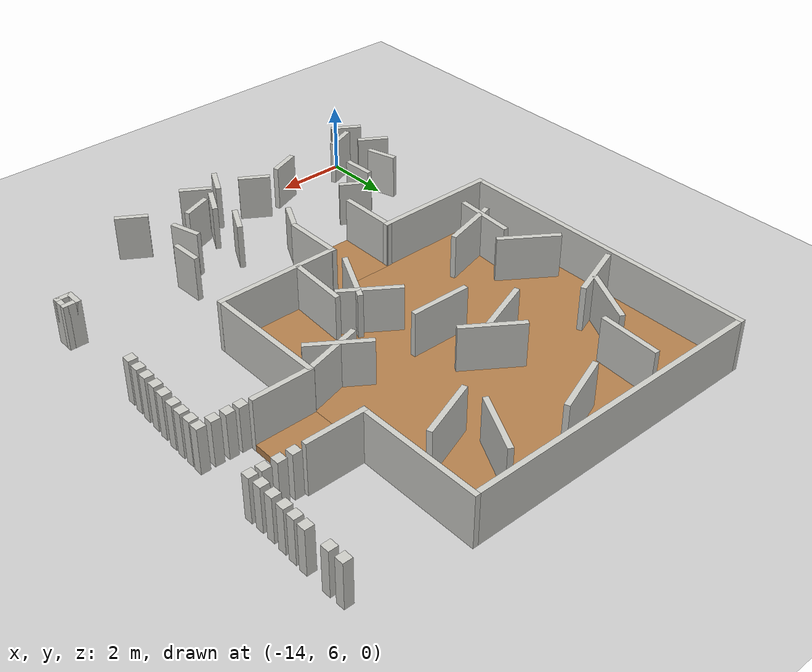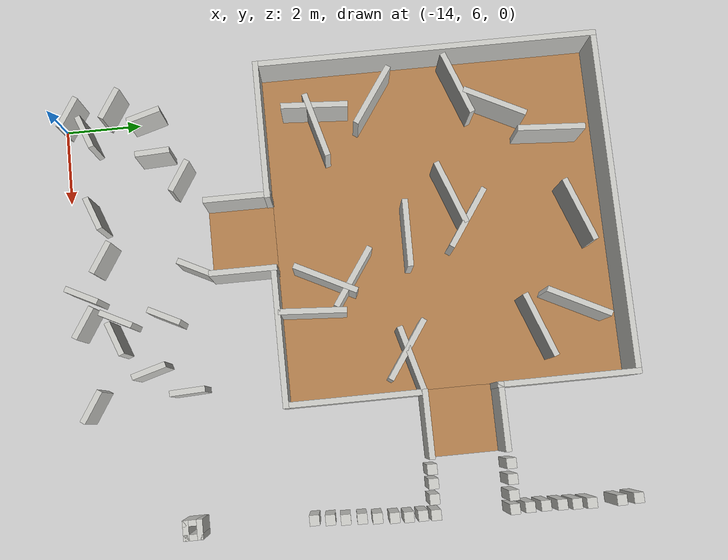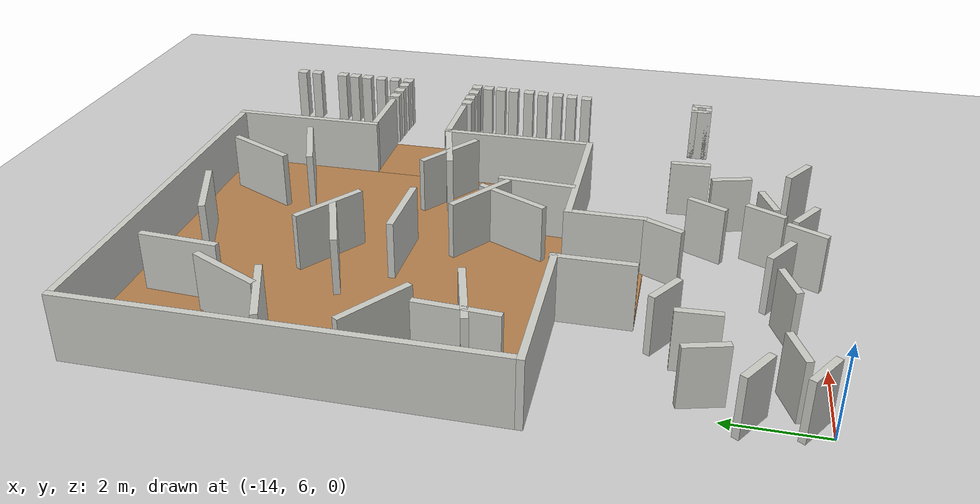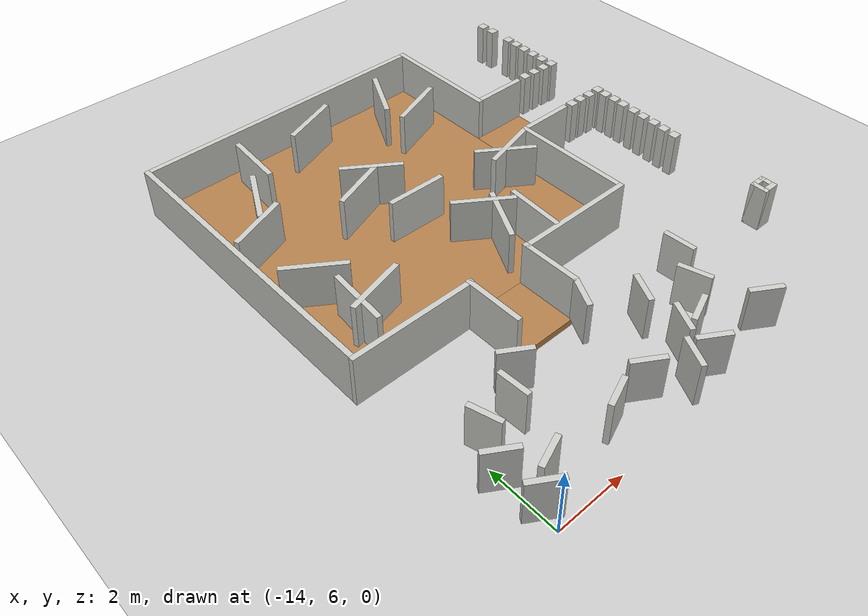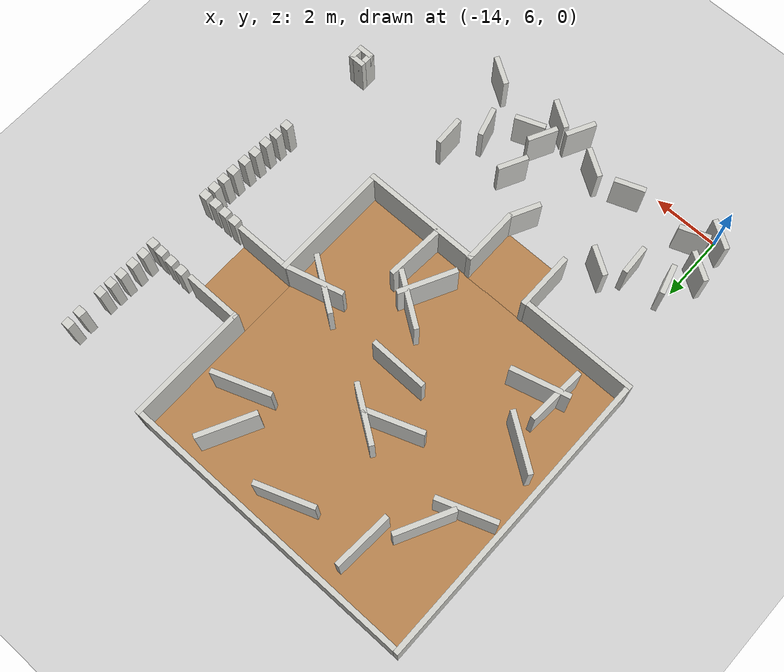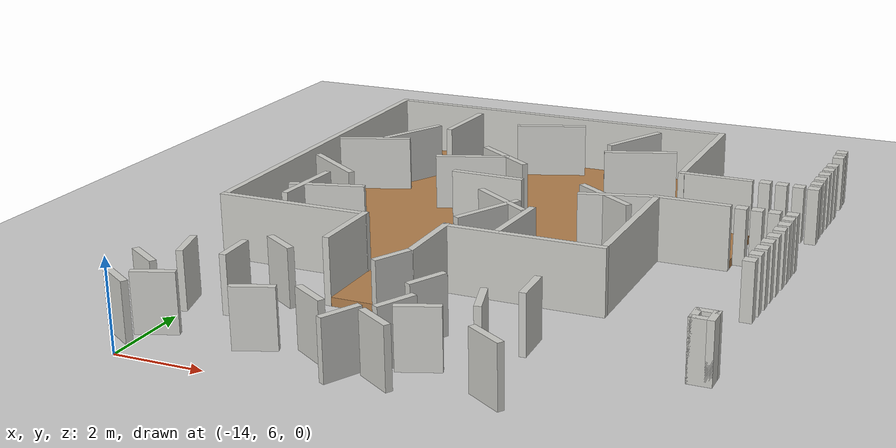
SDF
<sdf version="1.6">
 <world name="default">
  <model name="ground_plane">
   <static>1</static>
   <link name="link">
    <collision name="collision">
     <geometry><plane><normal>0 0 1</normal><size>100 100</size></plane></geometry>
     <surface><friction><ode><mu>100</mu><mu2>50</mu2></ode></friction></surface>
    </collision>
    <visual name="visual">
     <cast_shadows>0</cast_shadows>
     <geometry><plane><normal>0 0 1</normal><size>100 100</size></plane></geometry>
     <material>
      <script><uri>file://media/materials/scripts/gazebo.material</uri><name>Gazebo/Grey</name></script>
     </material>
    </visual>
   </link>
  </model>
  <model name="nerve_straight_clone">
   <pose>-10.4732 10.573 0 0 -0 0</pose>
   <link name="Wall_0">
    <collision name="Wall_0_Collision">
     <geometry><box><size>1.76 1.75 0.2</size></box></geometry>
     <pose>0 0 0.1 0 -0 0</pose>
    </collision>
    <visual name="Wall_0_Visual">
     <pose>0 0 0.1 0 -0 0</pose>
     <geometry><box><size>1.76 1.75 0.2</size></box></geometry>
     <material>
      <script><uri>file://media/materials/scripts/gazebo.material</uri><name>Gazebo/Wood</name></script>
      <ambient>1 0.764706 0.305882 1</ambient>
     </material>
    </visual>
    <pose>0.005 -0.002 0 0 -0 3.14159</pose>
   </link>
   <link name="Wall_2">
    <collision name="Wall_2_Collision">
     <geometry><box><size>1.75 0.15 1.5</size></box></geometry>
     <pose>0 0 0.75 0 -0 0</pose>
    </collision>
    <visual name="Wall_2_Visual">
     <pose>0 0 0.75 0 -0 0</pose>
     <geometry><box><size>1.75 0.15 1.5</size></box></geometry>
     <material>
      <script><uri>file://media/materials/scripts/gazebo.material</uri><name>Gazebo/CeilingTiled</name></script>
      <ambient>1 0.764706 0.305882 1</ambient>
     </material>
    </visual>
    <pose>-0.955 0.002 0 0 0 -1.5708</pose>
   </link>
   <link name="Wall_4">
    <collision name="Wall_4_Collision">
     <geometry><box><size>1.75 0.15 1.5</size></box></geometry>
     <pose>0 0 0.75 0 -0 0</pose>
    </collision>
    <visual name="Wall_4_Visual">
     <pose>0 0 0.75 0 -0 0</pose>
     <geometry><box><size>1.75 0.15 1.5</size></box></geometry>
     <material>
      <script><uri>file://media/materials/scripts/gazebo.material</uri><name>Gazebo/CeilingTiled</name></script>
      <ambient>1 0.764706 0.305882 1</ambient>
     </material>
    </visual>
    <pose>0.955 0.002 0 0 0 -1.5708</pose>
   </link>
   <static>1</static>
  </model>
  <model name="nerve_room_5x5ARENA_right_clone">
   <pose>-10.4631 15.8033 0 0 -0 1.5708</pose>
   <link name="Wall_11">
    <collision name="Wall_11_Collision">
     <geometry><box><size>8.75 0.15 1.5</size></box></geometry>
     <pose>0 0 0.75 0 -0 0</pose>
    </collision>
    <visual name="Wall_11_Visual">
     <pose>0 0 0.75 0 -0 0</pose>
     <geometry><box><size>8.75 0.15 1.5</size></box></geometry>
     <material>
      <script><uri>file://media/materials/scripts/gazebo.material</uri><name>Gazebo/CeilingTiled</name></script>
      <ambient>1 0.764706 0.305882 1</ambient>
     </material>
    </visual>
    <pose>4.44912 -0.000431 0 0 0 -1.5708</pose>
   </link>
   <link name="Wall_13">
    <collision name="Wall_13_Collision">
     <geometry><box><size>3.65 0.15 1.5</size></box></geometry>
     <pose>0 0 0.75 0 -0 0</pose>
    </collision>
    <visual name="Wall_13_Visual">
     <pose>0 0 0.75 0 -0 0</pose>
     <geometry><box><size>3.65 0.15 1.5</size></box></geometry>
     <material>
      <script><uri>file://media/materials/scripts/gazebo.material</uri><name>Gazebo/CeilingTiled</name></script>
      <ambient>1 0.764706 0.305882 1</ambient>
     </material>
    </visual>
    <pose>-4.44961 2.70076 0 0 0 -1.5708</pose>
   </link>
   <link name="Wall_15">
    <collision name="Wall_15_Collision">
     <geometry><box><size>3.65 0.15 1.5</size></box></geometry>
     <pose>0 0 0.75 0 -0 0</pose>
    </collision>
    <visual name="Wall_15_Visual">
     <pose>0 0 0.75 0 -0 0</pose>
     <geometry><box><size>3.65 0.15 1.5</size></box></geometry>
     <material>
      <script><uri>file://media/materials/scripts/gazebo.material</uri><name>Gazebo/CeilingTiled</name></script>
      <ambient>1 0.764706 0.305882 1</ambient>
     </material>
    </visual>
    <pose>2.69961 -4.45076 0 0 -0 0</pose>
   </link>
   <link name="Wall_17">
    <collision name="Wall_17_Collision">
     <geometry><box><size>8.90028 0.15 1.5</size></box></geometry>
     <pose>0 0 0.75 0 -0 0</pose>
    </collision>
    <visual name="Wall_17_Visual">
     <pose>0 0 0.75 0 -0 0</pose>
     <geometry><box><size>8.90028 0.15 1.5</size></box></geometry>
     <material>
      <script><uri>file://media/materials/scripts/gazebo.material</uri><name>Gazebo/CeilingTiled</name></script>
      <ambient>1 0.764706 0.305882 1</ambient>
     </material>
    </visual>
    <pose>0.074346 4.45022 0 0 0 -6.5e-05</pose>
   </link>
   <link name="Wall_21">
    <collision name="Wall_21_Collision">
     <geometry><box><size>3.5 0.15 1.5</size></box></geometry>
     <pose>0 0 0.75 0 -0 0</pose>
    </collision>
    <visual name="Wall_21_Visual">
     <pose>0 0 0.75 0 -0 0</pose>
     <geometry><box><size>3.5 0.15 1.5</size></box></geometry>
     <material>
      <script><uri>file://media/materials/scripts/gazebo.material</uri><name>Gazebo/CeilingTiled</name></script>
      <ambient>1 0.764706 0.305882 1</ambient>
     </material>
    </visual>
    <pose>-2.62383 -4.4498 0 0 -0 0</pose>
   </link>
   <link name="Wall_25">
    <collision name="Wall_25_Collision">
     <geometry><box><size>3.65 0.15 1.5</size></box></geometry>
     <pose>0 0 0.75 0 -0 0</pose>
    </collision>
    <visual name="Wall_25_Visual">
     <pose>0 0 0.75 0 -0 0</pose>
     <geometry><box><size>3.65 0.15 1.5</size></box></geometry>
     <material>
      <script><uri>file://media/materials/scripts/gazebo.material</uri><name>Gazebo/CeilingTiled</name></script>
      <ambient>1 0.764706 0.305882 1</ambient>
     </material>
    </visual>
    <pose>-4.44941 -2.70044 0 0 0 -1.5708</pose>
   </link>
   <link name="Wall_6">
    <collision name="Wall_6_Collision">
     <geometry><box><size>8.76 8.75 0.2</size></box></geometry>
     <pose>0 0 0.1 0 -0 0</pose>
    </collision>
    <visual name="Wall_6_Visual">
     <pose>0 0 0.1 0 -0 0</pose>
     <geometry><box><size>8.76 8.75 0.2</size></box></geometry>
     <material>
      <script><uri>file://media/materials/scripts/gazebo.material</uri><name>Gazebo/Wood</name></script>
      <ambient>1 0.764706 0.305882 1</ambient>
     </material>
    </visual>
    <pose>0.000485 -0.004173 0 0 -0 1.5708</pose>
   </link>
   <static>1</static>
  </model>
  <model name="nerve_straight_clone_clone">
   <pose>-5.21273 15.8107 0 0 0 -1.5708</pose>
   <link name="Wall_0">
    <collision name="Wall_0_Collision">
     <geometry><box><size>1.76 1.75 0.2</size></box></geometry>
     <pose>0 0 0.1 0 -0 0</pose>
    </collision>
    <visual name="Wall_0_Visual">
     <pose>0 0 0.1 0 -0 0</pose>
     <geometry><box><size>1.76 1.75 0.2</size></box></geometry>
     <material>
      <script><uri>file://media/materials/scripts/gazebo.material</uri><name>Gazebo/Wood</name></script>
      <ambient>1 0.764706 0.305882 1</ambient>
     </material>
    </visual>
    <pose>0.005 -0.002 0 0 -0 3.14159</pose>
   </link>
   <link name="Wall_2">
    <collision name="Wall_2_Collision">
     <geometry><box><size>1.75 0.15 1.5</size></box></geometry>
     <pose>0 0 0.75 0 -0 0</pose>
    </collision>
    <visual name="Wall_2_Visual">
     <pose>0 0 0.75 0 -0 0</pose>
     <geometry><box><size>1.75 0.15 1.5</size></box></geometry>
     <material>
      <script><uri>file://media/materials/scripts/gazebo.material</uri><name>Gazebo/CeilingTiled</name></script>
      <ambient>1 0.764706 0.305882 1</ambient>
     </material>
    </visual>
    <pose>-0.955 0.002 0 0 0 -1.5708</pose>
   </link>
   <link name="Wall_4">
    <collision name="Wall_4_Collision">
     <geometry><box><size>1.75 0.15 1.5</size></box></geometry>
     <pose>0 0 0.75 0 -0 0</pose>
    </collision>
    <visual name="Wall_4_Visual">
     <pose>0 0 0.75 0 -0 0</pose>
     <geometry><box><size>1.75 0.15 1.5</size></box></geometry>
     <material>
      <script><uri>file://media/materials/scripts/gazebo.material</uri><name>Gazebo/CeilingTiled</name></script>
      <ambient>1 0.764706 0.305882 1</ambient>
     </material>
    </visual>
    <pose>0.955 0.002 0 0 0 -1.5708</pose>
   </link>
   <static>1</static>
  </model>
  <model name="nerve_obs_squarepillar_large">
   <pose>-3.21025 8.80828 0.2 0 -0 0</pose>
   <link name="Wall_31">
    <collision name="Wall_31_Collision">
     <geometry><box><size>0.5 0.15 1.3</size></box></geometry>
     <pose>0 0 0.65 0 -0 0</pose>
    </collision>
    <visual name="Wall_31_Visual">
     <pose>0 0 0.65 0 -0 0</pose>
     <geometry><box><size>0.5 0.15 1.3</size></box></geometry>
     <material>
      <script><uri>file://media/materials/scripts/gazebo.material</uri><name>Gazebo/CeilingTiled</name></script>
      <ambient>1 0.764706 0.305882 1</ambient>
     </material>
    </visual>
    <pose>-0.175 0 0 0 0 -1.5708</pose>
   </link>
   <link name="Wall_32">
    <collision name="Wall_32_Collision">
     <geometry><box><size>0.5 0.15 1.3</size></box></geometry>
     <pose>0 0 0.65 0 -0 0</pose>
    </collision>
    <visual name="Wall_32_Visual">
     <pose>0 0 0.65 0 -0 0</pose>
     <geometry><box><size>0.5 0.15 1.3</size></box></geometry>
     <material>
      <script><uri>file://media/materials/scripts/gazebo.material</uri><name>Gazebo/CeilingTiled</name></script>
      <ambient>1 0.764706 0.305882 1</ambient>
     </material>
    </visual>
    <pose>0 -0.175 0 0 -0 0</pose>
   </link>
   <link name="Wall_33">
    <collision name="Wall_33_Collision">
     <geometry><box><size>0.5 0.15 1.3</size></box></geometry>
     <pose>0 0 0.65 0 -0 0</pose>
    </collision>
    <visual name="Wall_33_Visual">
     <pose>0 0 0.65 0 -0 0</pose>
     <geometry><box><size>0.5 0.15 1.3</size></box></geometry>
     <material>
      <script><uri>file://media/materials/scripts/gazebo.material</uri><name>Gazebo/CeilingTiled</name></script>
      <ambient>1 0.764706 0.305882 1</ambient>
     </material>
    </visual>
    <pose>0.175 0 0 0 -0 1.5708</pose>
   </link>
   <link name="Wall_34">
    <collision name="Wall_34_Collision">
     <geometry><box><size>0.5 0.15 1.3</size></box></geometry>
     <pose>0 0 0.65 0 -0 0</pose>
    </collision>
    <visual name="Wall_34_Visual">
     <pose>0 0 0.65 0 -0 0</pose>
     <geometry><box><size>0.5 0.15 1.3</size></box></geometry>
     <material>
      <script><uri>file://media/materials/scripts/gazebo.material</uri><name>Gazebo/CeilingTiled</name></script>
      <ambient>1 0.764706 0.305882 1</ambient>
     </material>
    </visual>
    <pose>0 0.175 0 0 -0 3.14159</pose>
   </link>
   <static>1</static>
  </model>
  <model name="nerve_obs_wall_short_clone_0">
   <pose>-7.21158 8.00337 0.2 0 0 -1.2889</pose>
   <link name="Wall_21">
    <collision name="Wall_21_Collision">
     <geometry><box><size>0.9 0.15 1.3</size></box></geometry>
     <pose>0 0 0.65 0 -0 0</pose>
    </collision>
    <visual name="Wall_21_Visual">
     <pose>0 0 0.65 0 -0 0</pose>
     <geometry><box><size>0.9 0.15 1.3</size></box></geometry>
     <material>
      <script><uri>file://media/materials/scripts/gazebo.material</uri><name>Gazebo/CeilingTiled</name></script>
      <ambient>1 0.764706 0.305882 1</ambient>
     </material>
    </visual>
   </link>
   <static>1</static>
  </model>
  <model name="nerve_obs_wall_short_clone_1">
   <pose>-13.8397 8.33593 0.2 0 0 -1.2889</pose>
   <link name="Wall_21">
    <collision name="Wall_21_Collision">
     <geometry><box><size>0.9 0.15 1.3</size></box></geometry>
     <pose>0 0 0.65 0 -0 0</pose>
    </collision>
    <visual name="Wall_21_Visual">
     <pose>0 0 0.65 0 -0 0</pose>
     <geometry><box><size>0.9 0.15 1.3</size></box></geometry>
     <material>
      <script><uri>file://media/materials/scripts/gazebo.material</uri><name>Gazebo/CeilingTiled</name></script>
      <ambient>1 0.764706 0.305882 1</ambient>
     </material>
    </visual>
   </link>
   <static>1</static>
  </model>
  <model name="nerve_obs_wall_short_clone_4">
   <pose>-8.55268 8.48308 0.2 0 0 -2.03741</pose>
   <link name="Wall_21">
    <collision name="Wall_21_Collision">
     <geometry><box><size>0.9 0.15 1.3</size></box></geometry>
     <pose>0 0 0.65 0 -0 0</pose>
    </collision>
    <visual name="Wall_21_Visual">
     <pose>0 0 0.65 0 -0 0</pose>
     <geometry><box><size>0.9 0.15 1.3</size></box></geometry>
     <material>
      <script><uri>file://media/materials/scripts/gazebo.material</uri><name>Gazebo/CeilingTiled</name></script>
      <ambient>1 0.764706 0.305882 1</ambient>
     </material>
    </visual>
   </link>
   <static>1</static>
  </model>
  <model name="nerve_obs_wall_short_clone_8">
   <pose>-9.72669 9.33392 0.2 0 0 -2.03741</pose>
   <link name="Wall_21">
    <collision name="Wall_21_Collision">
     <geometry><box><size>0.9 0.15 1.3</size></box></geometry>
     <pose>0 0 0.65 0 -0 0</pose>
    </collision>
    <visual name="Wall_21_Visual">
     <pose>0 0 0.65 0 -0 0</pose>
     <geometry><box><size>0.9 0.15 1.3</size></box></geometry>
     <material>
      <script><uri>file://media/materials/scripts/gazebo.material</uri><name>Gazebo/CeilingTiled</name></script>
      <ambient>1 0.764706 0.305882 1</ambient>
     </material>
    </visual>
   </link>
   <static>1</static>
  </model>
  <model name="nerve_obs_wall_short_clone_9">
   <pose>-8.103 7.20106 0.2 0 0 -2.78163</pose>
   <link name="Wall_21">
    <collision name="Wall_21_Collision">
     <geometry><box><size>0.9 0.15 1.3</size></box></geometry>
     <pose>0 0 0.65 0 -0 0</pose>
    </collision>
    <visual name="Wall_21_Visual">
     <pose>0 0 0.65 0 -0 0</pose>
     <geometry><box><size>0.9 0.15 1.3</size></box></geometry>
     <material>
      <script><uri>file://media/materials/scripts/gazebo.material</uri><name>Gazebo/CeilingTiled</name></script>
      <ambient>1 0.764706 0.305882 1</ambient>
     </material>
    </visual>
   </link>
   <static>1</static>
  </model>
  <model name="nerve_obs_wall_short_clone_10">
   <pose>-11.3669 6.86113 0.2 0 0 -2.78163</pose>
   <link name="Wall_21">
    <collision name="Wall_21_Collision">
     <geometry><box><size>0.9 0.15 1.3</size></box></geometry>
     <pose>0 0 0.65 0 -0 0</pose>
    </collision>
    <visual name="Wall_21_Visual">
     <pose>0 0 0.65 0 -0 0</pose>
     <geometry><box><size>0.9 0.15 1.3</size></box></geometry>
     <material>
      <script><uri>file://media/materials/scripts/gazebo.material</uri><name>Gazebo/CeilingTiled</name></script>
      <ambient>1 0.764706 0.305882 1</ambient>
     </material>
    </visual>
   </link>
   <static>1</static>
  </model>
  <model name="nerve_obs_wall_short_clone_14">
   <pose>-8.58012 6.43852 0.2 0 -0 2.5789</pose>
   <link name="Wall_21">
    <collision name="Wall_21_Collision">
     <geometry><box><size>0.9 0.15 1.3</size></box></geometry>
     <pose>0 0 0.65 0 -0 0</pose>
    </collision>
    <visual name="Wall_21_Visual">
     <pose>0 0 0.65 0 -0 0</pose>
     <geometry><box><size>0.9 0.15 1.3</size></box></geometry>
     <material>
      <script><uri>file://media/materials/scripts/gazebo.material</uri><name>Gazebo/CeilingTiled</name></script>
      <ambient>1 0.764706 0.305882 1</ambient>
     </material>
    </visual>
   </link>
   <static>1</static>
  </model>
  <model name="nerve_obs_wall_short_clone_16">
   <pose>-14.2351 7.46992 0.2 0 -0 2.5789</pose>
   <link name="Wall_21">
    <collision name="Wall_21_Collision">
     <geometry><box><size>0.9 0.15 1.3</size></box></geometry>
     <pose>0 0 0.65 0 -0 0</pose>
    </collision>
    <visual name="Wall_21_Visual">
     <pose>0 0 0.65 0 -0 0</pose>
     <geometry><box><size>0.9 0.15 1.3</size></box></geometry>
     <material>
      <script><uri>file://media/materials/scripts/gazebo.material</uri><name>Gazebo/CeilingTiled</name></script>
      <ambient>1 0.764706 0.305882 1</ambient>
     </material>
    </visual>
   </link>
   <static>1</static>
  </model>
  <model name="nerve_obs_wall_short_clone_17">
   <pose>-12.1436 9.13562 0.2 0 -0 2.5789</pose>
   <link name="Wall_21">
    <collision name="Wall_21_Collision">
     <geometry><box><size>0.9 0.15 1.3</size></box></geometry>
     <pose>0 0 0.65 0 -0 0</pose>
    </collision>
    <visual name="Wall_21_Visual">
     <pose>0 0 0.65 0 -0 0</pose>
     <geometry><box><size>0.9 0.15 1.3</size></box></geometry>
     <material>
      <script><uri>file://media/materials/scripts/gazebo.material</uri><name>Gazebo/CeilingTiled</name></script>
      <ambient>1 0.764706 0.305882 1</ambient>
     </material>
    </visual>
   </link>
   <static>1</static>
  </model>
  <model name="nerve_obs_wall_short_clone_18">
   <pose>-10.2103 6.9811 0.2 0 -0 2.5789</pose>
   <link name="Wall_21">
    <collision name="Wall_21_Collision">
     <geometry><box><size>0.9 0.15 1.3</size></box></geometry>
     <pose>0 0 0.65 0 -0 0</pose>
    </collision>
    <visual name="Wall_21_Visual">
     <pose>0 0 0.65 0 -0 0</pose>
     <geometry><box><size>0.9 0.15 1.3</size></box></geometry>
     <material>
      <script><uri>file://media/materials/scripts/gazebo.material</uri><name>Gazebo/CeilingTiled</name></script>
      <ambient>1 0.764706 0.305882 1</ambient>
     </material>
    </visual>
   </link>
   <static>1</static>
  </model>
  <model name="nerve_obs_wall_short_clone_22">
   <pose>-12.8276 8.49769 0.2 0 -0 1.61603</pose>
   <link name="Wall_21">
    <collision name="Wall_21_Collision">
     <geometry><box><size>0.9 0.15 1.3</size></box></geometry>
     <pose>0 0 0.65 0 -0 0</pose>
    </collision>
    <visual name="Wall_21_Visual">
     <pose>0 0 0.65 0 -0 0</pose>
     <geometry><box><size>0.9 0.15 1.3</size></box></geometry>
     <material>
      <script><uri>file://media/materials/scripts/gazebo.material</uri><name>Gazebo/CeilingTiled</name></script>
      <ambient>1 0.764706 0.305882 1</ambient>
     </material>
    </visual>
   </link>
   <static>1</static>
  </model>
  <model name="nerve_obs_wall_short_clone_23">
   <pose>-6.60947 8.93077 0.2 0 -0 1.61603</pose>
   <link name="Wall_21">
    <collision name="Wall_21_Collision">
     <geometry><box><size>0.9 0.15 1.3</size></box></geometry>
     <pose>0 0 0.65 0 -0 0</pose>
    </collision>
    <visual name="Wall_21_Visual">
     <pose>0 0 0.65 0 -0 0</pose>
     <geometry><box><size>0.9 0.15 1.3</size></box></geometry>
     <material>
      <script><uri>file://media/materials/scripts/gazebo.material</uri><name>Gazebo/CeilingTiled</name></script>
      <ambient>1 0.764706 0.305882 1</ambient>
     </material>
    </visual>
   </link>
   <static>1</static>
  </model>
  <model name="nerve_obs_wall_short_clone_27">
   <pose>-9.28251 6.44089 0.2 0 -0 1.10316</pose>
   <link name="Wall_21">
    <collision name="Wall_21_Collision">
     <geometry><box><size>0.9 0.15 1.3</size></box></geometry>
     <pose>0 0 0.65 0 -0 0</pose>
    </collision>
    <visual name="Wall_21_Visual">
     <pose>0 0 0.65 0 -0 0</pose>
     <geometry><box><size>0.9 0.15 1.3</size></box></geometry>
     <material>
      <script><uri>file://media/materials/scripts/gazebo.material</uri><name>Gazebo/CeilingTiled</name></script>
      <ambient>1 0.764706 0.305882 1</ambient>
     </material>
    </visual>
   </link>
   <static>1</static>
  </model>
  <model name="nerve_obs_wall_short_clone_28">
   <pose>-8.59824 7.26476 0.2 0 -0 1.10316</pose>
   <link name="Wall_21">
    <collision name="Wall_21_Collision">
     <geometry><box><size>0.9 0.15 1.3</size></box></geometry>
     <pose>0 0 0.65 0 -0 0</pose>
    </collision>
    <visual name="Wall_21_Visual">
     <pose>0 0 0.65 0 -0 0</pose>
     <geometry><box><size>0.9 0.15 1.3</size></box></geometry>
     <material>
      <script><uri>file://media/materials/scripts/gazebo.material</uri><name>Gazebo/CeilingTiled</name></script>
      <ambient>1 0.764706 0.305882 1</ambient>
     </material>
    </visual>
   </link>
   <static>1</static>
  </model>
  <model name="nerve_obs_wall_short_clone_18_clone_0">
   <pose>-6.45301 6.5138 0.2 0 -0 2.5789</pose>
   <link name="Wall_21">
    <collision name="Wall_21_Collision">
     <geometry><box><size>0.9 0.15 1.3</size></box></geometry>
     <pose>0 0 0.65 0 -0 0</pose>
    </collision>
    <visual name="Wall_21_Visual">
     <pose>0 0 0.65 0 -0 0</pose>
     <geometry><box><size>0.9 0.15 1.3</size></box></geometry>
     <material>
      <script><uri>file://media/materials/scripts/gazebo.material</uri><name>Gazebo/CeilingTiled</name></script>
      <ambient>1 0.764706 0.305882 1</ambient>
     </material>
    </visual>
   </link>
   <static>1</static>
  </model>
  <model name="nerve_obs_wall_short_clone_18_clone_1">
   <pose>-14.0944 6.37483 0.2 0 -0 2.5789</pose>
   <link name="Wall_21">
    <collision name="Wall_21_Collision">
     <geometry><box><size>0.9 0.15 1.3</size></box></geometry>
     <pose>0 0 0.65 0 -0 0</pose>
    </collision>
    <visual name="Wall_21_Visual">
     <pose>0 0 0.65 0 -0 0</pose>
     <geometry><box><size>0.9 0.15 1.3</size></box></geometry>
     <material>
      <script><uri>file://media/materials/scripts/gazebo.material</uri><name>Gazebo/CeilingTiled</name></script>
      <ambient>1 0.764706 0.305882 1</ambient>
     </material>
    </visual>
   </link>
   <static>1</static>
  </model>
  <model name="nerve_obs_wall_short_clone_10_clone">
   <pose>-13.5353 6.78593 0.2 0 0 -2.78163</pose>
   <link name="Wall_21">
    <collision name="Wall_21_Collision">
     <geometry><box><size>0.9 0.15 1.3</size></box></geometry>
     <pose>0 0 0.65 0 -0 0</pose>
    </collision>
    <visual name="Wall_21_Visual">
     <pose>0 0 0.65 0 -0 0</pose>
     <geometry><box><size>0.9 0.15 1.3</size></box></geometry>
     <material>
      <script><uri>file://media/materials/scripts/gazebo.material</uri><name>Gazebo/CeilingTiled</name></script>
      <ambient>1 0.764706 0.305882 1</ambient>
     </material>
    </visual>
   </link>
   <static>1</static>
  </model>
  <model name="nerve_obs_wall_full_clone">
   <pose>-9.12237 12.647 0.2 0 -0 1.10219</pose>
   <link name="Wall_21">
    <collision name="Wall_21_Collision">
     <geometry><box><size>1.75 0.15 1.3</size></box></geometry>
     <pose>0 0 0.65 0 -0 0</pose>
    </collision>
    <visual name="Wall_21_Visual">
     <pose>0 0 0.65 0 -0 0</pose>
     <geometry><box><size>1.75 0.15 1.3</size></box></geometry>
     <material>
      <script><uri>file://media/materials/scripts/gazebo.material</uri><name>Gazebo/CeilingTiled</name></script>
      <ambient>1 0.764706 0.305882 1</ambient>
     </material>
    </visual>
   </link>
   <static>1</static>
  </model>
  <model name="nerve_obs_wall_full_clone_0">
   <pose>-13.3204 17.4756 0.2 0 -0 1.10219</pose>
   <link name="Wall_21">
    <collision name="Wall_21_Collision">
     <geometry><box><size>1.75 0.15 1.3</size></box></geometry>
     <pose>0 0 0.65 0 -0 0</pose>
    </collision>
    <visual name="Wall_21_Visual">
     <pose>0 0 0.65 0 -0 0</pose>
     <geometry><box><size>1.75 0.15 1.3</size></box></geometry>
     <material>
      <script><uri>file://media/materials/scripts/gazebo.material</uri><name>Gazebo/CeilingTiled</name></script>
      <ambient>1 0.764706 0.305882 1</ambient>
     </material>
    </visual>
   </link>
   <static>1</static>
  </model>
  <model name="nerve_obs_wall_full_clone_1">
   <pose>-7.90562 19.0086 0.2 0 -0 1.10219</pose>
   <link name="Wall_21">
    <collision name="Wall_21_Collision">
     <geometry><box><size>1.75 0.15 1.3</size></box></geometry>
     <pose>0 0 0.65 0 -0 0</pose>
    </collision>
    <visual name="Wall_21_Visual">
     <pose>0 0 0.65 0 -0 0</pose>
     <geometry><box><size>1.75 0.15 1.3</size></box></geometry>
     <material>
      <script><uri>file://media/materials/scripts/gazebo.material</uri><name>Gazebo/CeilingTiled</name></script>
      <ambient>1 0.764706 0.305882 1</ambient>
     </material>
    </visual>
   </link>
   <static>1</static>
  </model>
  <model name="nerve_obs_wall_full_clone_2">
   <pose>-6.86671 14.6211 0.2 0 -0 0.263144</pose>
   <link name="Wall_21">
    <collision name="Wall_21_Collision">
     <geometry><box><size>1.75 0.15 1.3</size></box></geometry>
     <pose>0 0 0.65 0 -0 0</pose>
    </collision>
    <visual name="Wall_21_Visual">
     <pose>0 0 0.65 0 -0 0</pose>
     <geometry><box><size>1.75 0.15 1.3</size></box></geometry>
     <material>
      <script><uri>file://media/materials/scripts/gazebo.material</uri><name>Gazebo/CeilingTiled</name></script>
      <ambient>1 0.764706 0.305882 1</ambient>
     </material>
    </visual>
   </link>
   <static>1</static>
  </model>
  <model name="nerve_obs_wall_full_clone_3">
   <pose>-13.1423 12.7834 0.2 0 -0 0.263144</pose>
   <link name="Wall_21">
    <collision name="Wall_21_Collision">
     <geometry><box><size>1.75 0.15 1.3</size></box></geometry>
     <pose>0 0 0.65 0 -0 0</pose>
    </collision>
    <visual name="Wall_21_Visual">
     <pose>0 0 0.65 0 -0 0</pose>
     <geometry><box><size>1.75 0.15 1.3</size></box></geometry>
     <material>
      <script><uri>file://media/materials/scripts/gazebo.material</uri><name>Gazebo/CeilingTiled</name></script>
      <ambient>1 0.764706 0.305882 1</ambient>
     </material>
    </visual>
   </link>
   <static>1</static>
  </model>
  <model name="nerve_obs_wall_full_clone_4">
   <pose>-7.11698 14.5387 0.2 0 0 -0.604398</pose>
   <link name="Wall_21">
    <collision name="Wall_21_Collision">
     <geometry><box><size>1.75 0.15 1.3</size></box></geometry>
     <pose>0 0 0.65 0 -0 0</pose>
    </collision>
    <visual name="Wall_21_Visual">
     <pose>0 0 0.65 0 -0 0</pose>
     <geometry><box><size>1.75 0.15 1.3</size></box></geometry>
     <material>
      <script><uri>file://media/materials/scripts/gazebo.material</uri><name>Gazebo/CeilingTiled</name></script>
      <ambient>1 0.764706 0.305882 1</ambient>
     </material>
    </visual>
   </link>
   <static>1</static>
  </model>
  <model name="nerve_obs_wall_full_clone_5">
   <pose>-9.09066 13.3523 0.2 0 0 -0.604398</pose>
   <link name="Wall_21">
    <collision name="Wall_21_Collision">
     <geometry><box><size>1.75 0.15 1.3</size></box></geometry>
     <pose>0 0 0.65 0 -0 0</pose>
    </collision>
    <visual name="Wall_21_Visual">
     <pose>0 0 0.65 0 -0 0</pose>
     <geometry><box><size>1.75 0.15 1.3</size></box></geometry>
     <material>
      <script><uri>file://media/materials/scripts/gazebo.material</uri><name>Gazebo/CeilingTiled</name></script>
      <ambient>1 0.764706 0.305882 1</ambient>
     </material>
    </visual>
   </link>
   <static>1</static>
  </model>
  <model name="nerve_obs_wall_full_clone_6">
   <pose>-10.3283 16.436 0.2 0 0 -0.604398</pose>
   <link name="Wall_21">
    <collision name="Wall_21_Collision">
     <geometry><box><size>1.75 0.15 1.3</size></box></geometry>
     <pose>0 0 0.65 0 -0 0</pose>
    </collision>
    <visual name="Wall_21_Visual">
     <pose>0 0 0.65 0 -0 0</pose>
     <geometry><box><size>1.75 0.15 1.3</size></box></geometry>
     <material>
      <script><uri>file://media/materials/scripts/gazebo.material</uri><name>Gazebo/CeilingTiled</name></script>
      <ambient>1 0.764706 0.305882 1</ambient>
     </material>
    </visual>
   </link>
   <static>1</static>
  </model>
  <model name="nerve_obs_wall_full_clone_7">
   <pose>-13.8032 14.3117 0.2 0 0 -0.604398</pose>
   <link name="Wall_21">
    <collision name="Wall_21_Collision">
     <geometry><box><size>1.75 0.15 1.3</size></box></geometry>
     <pose>0 0 0.65 0 -0 0</pose>
    </collision>
    <visual name="Wall_21_Visual">
     <pose>0 0 0.65 0 -0 0</pose>
     <geometry><box><size>1.75 0.15 1.3</size></box></geometry>
     <material>
      <script><uri>file://media/materials/scripts/gazebo.material</uri><name>Gazebo/CeilingTiled</name></script>
      <ambient>1 0.764706 0.305882 1</ambient>
     </material>
    </visual>
   </link>
   <static>1</static>
  </model>
  <model name="nerve_obs_wall_full_clone_8">
   <pose>-12.484 18.8582 0.2 0 0 -1.63412</pose>
   <link name="Wall_21">
    <collision name="Wall_21_Collision">
     <geometry><box><size>1.75 0.15 1.3</size></box></geometry>
     <pose>0 0 0.65 0 -0 0</pose>
    </collision>
    <visual name="Wall_21_Visual">
     <pose>0 0 0.65 0 -0 0</pose>
     <geometry><box><size>1.75 0.15 1.3</size></box></geometry>
     <material>
      <script><uri>file://media/materials/scripts/gazebo.material</uri><name>Gazebo/CeilingTiled</name></script>
      <ambient>1 0.764706 0.305882 1</ambient>
     </material>
    </visual>
   </link>
   <static>1</static>
  </model>
  <model name="nerve_obs_wall_full_clone_9">
   <pose>-13.6693 12.7853 0.2 0 0 -1.63412</pose>
   <link name="Wall_21">
    <collision name="Wall_21_Collision">
     <geometry><box><size>1.75 0.15 1.3</size></box></geometry>
     <pose>0 0 0.65 0 -0 0</pose>
    </collision>
    <visual name="Wall_21_Visual">
     <pose>0 0 0.65 0 -0 0</pose>
     <geometry><box><size>1.75 0.15 1.3</size></box></geometry>
     <material>
      <script><uri>file://media/materials/scripts/gazebo.material</uri><name>Gazebo/CeilingTiled</name></script>
      <ambient>1 0.764706 0.305882 1</ambient>
     </material>
    </visual>
   </link>
   <static>1</static>
  </model>
  <model name="nerve_obs_wall_full_clone_10">
   <pose>-8.3176 12.2403 0.2 0 0 -1.63412</pose>
   <link name="Wall_21">
    <collision name="Wall_21_Collision">
     <geometry><box><size>1.75 0.15 1.3</size></box></geometry>
     <pose>0 0 0.65 0 -0 0</pose>
    </collision>
    <visual name="Wall_21_Visual">
     <pose>0 0 0.65 0 -0 0</pose>
     <geometry><box><size>1.75 0.15 1.3</size></box></geometry>
     <material>
      <script><uri>file://media/materials/scripts/gazebo.material</uri><name>Gazebo/CeilingTiled</name></script>
      <ambient>1 0.764706 0.305882 1</ambient>
     </material>
    </visual>
   </link>
   <static>1</static>
  </model>
  <model name="nerve_obs_wall_full_clone_11">
   <pose>-7.41009 17.9527 0.2 0 0 -2.78997</pose>
   <link name="Wall_21">
    <collision name="Wall_21_Collision">
     <geometry><box><size>1.75 0.15 1.3</size></box></geometry>
     <pose>0 0 0.65 0 -0 0</pose>
    </collision>
    <visual name="Wall_21_Visual">
     <pose>0 0 0.65 0 -0 0</pose>
     <geometry><box><size>1.75 0.15 1.3</size></box></geometry>
     <material>
      <script><uri>file://media/materials/scripts/gazebo.material</uri><name>Gazebo/CeilingTiled</name></script>
      <ambient>1 0.764706 0.305882 1</ambient>
     </material>
    </visual>
   </link>
   <static>1</static>
  </model>
  <model name="nerve_obs_wall_full_clone_12">
   <pose>-11.0232 16.0782 0.2 0 0 -2.78997</pose>
   <link name="Wall_21">
    <collision name="Wall_21_Collision">
     <geometry><box><size>1.75 0.15 1.3</size></box></geometry>
     <pose>0 0 0.65 0 -0 0</pose>
    </collision>
    <visual name="Wall_21_Visual">
     <pose>0 0 0.65 0 -0 0</pose>
     <geometry><box><size>1.75 0.15 1.3</size></box></geometry>
     <material>
      <script><uri>file://media/materials/scripts/gazebo.material</uri><name>Gazebo/CeilingTiled</name></script>
      <ambient>1 0.764706 0.305882 1</ambient>
     </material>
    </visual>
   </link>
   <static>1</static>
  </model>
  <model name="nerve_obs_wall_full_clone_13">
   <pose>-13.9065 16.5597 0.2 0 0 -2.78997</pose>
   <link name="Wall_21">
    <collision name="Wall_21_Collision">
     <geometry><box><size>1.75 0.15 1.3</size></box></geometry>
     <pose>0 0 0.65 0 -0 0</pose>
    </collision>
    <visual name="Wall_21_Visual">
     <pose>0 0 0.65 0 -0 0</pose>
     <geometry><box><size>1.75 0.15 1.3</size></box></geometry>
     <material>
      <script><uri>file://media/materials/scripts/gazebo.material</uri><name>Gazebo/CeilingTiled</name></script>
      <ambient>1 0.764706 0.305882 1</ambient>
     </material>
    </visual>
   </link>
   <static>1</static>
  </model>
  <model name="nerve_obs_wall_full_clone_14">
   <pose>-10.2627 19.3216 0.2 0 0 -2.78997</pose>
   <link name="Wall_21">
    <collision name="Wall_21_Collision">
     <geometry><box><size>1.75 0.15 1.3</size></box></geometry>
     <pose>0 0 0.65 0 -0 0</pose>
    </collision>
    <visual name="Wall_21_Visual">
     <pose>0 0 0.65 0 -0 0</pose>
     <geometry><box><size>1.75 0.15 1.3</size></box></geometry>
     <material>
      <script><uri>file://media/materials/scripts/gazebo.material</uri><name>Gazebo/CeilingTiled</name></script>
      <ambient>1 0.764706 0.305882 1</ambient>
     </material>
    </visual>
   </link>
   <static>1</static>
  </model>
  <model name="nerve_obs_wall_full_clone_15">
   <pose>-10.0841 14.8539 0.2 0 -0 3.12599</pose>
   <link name="Wall_21">
    <collision name="Wall_21_Collision">
     <geometry><box><size>1.75 0.15 1.3</size></box></geometry>
     <pose>0 0 0.65 0 -0 0</pose>
    </collision>
    <visual name="Wall_21_Visual">
     <pose>0 0 0.65 0 -0 0</pose>
     <geometry><box><size>1.75 0.15 1.3</size></box></geometry>
     <material>
      <script><uri>file://media/materials/scripts/gazebo.material</uri><name>Gazebo/CeilingTiled</name></script>
      <ambient>1 0.764706 0.305882 1</ambient>
     </material>
    </visual>
   </link>
   <static>1</static>
  </model>
  <model name="nerve_obs_squarepillar_small_clone_41_clone">
   <pose>-4.05445 16.7935 0.2 0 -0 0</pose>
   <link name="Wall_40">
    <collision name="Wall_40_Collision">
     <geometry><box><size>0.26 0.25 1.3</size></box></geometry>
     <pose>0 0 0.65 0 -0 0</pose>
    </collision>
    <visual name="Wall_40_Visual">
     <pose>0 0 0.65 0 -0 0</pose>
     <geometry><box><size>0.26 0.25 1.3</size></box></geometry>
     <material>
      <script><uri>file://media/materials/scripts/gazebo.material</uri><name>Gazebo/CeilingTiled</name></script>
      <ambient>1 0.764706 0.305882 1</ambient>
     </material>
    </visual>
   </link>
   <static>1</static>
  </model>
  <model name="nerve_obs_squarepillar_small_clone_41_clone_0">
   <pose>-3.66867 16.7829 0.2 0 -0 0</pose>
   <link name="Wall_40">
    <collision name="Wall_40_Collision">
     <geometry><box><size>0.26 0.25 1.3</size></box></geometry>
     <pose>0 0 0.65 0 -0 0</pose>
    </collision>
    <visual name="Wall_40_Visual">
     <pose>0 0 0.65 0 -0 0</pose>
     <geometry><box><size>0.26 0.25 1.3</size></box></geometry>
     <material>
      <script><uri>file://media/materials/scripts/gazebo.material</uri><name>Gazebo/CeilingTiled</name></script>
      <ambient>1 0.764706 0.305882 1</ambient>
     </material>
    </visual>
   </link>
   <static>1</static>
  </model>
  <model name="nerve_obs_squarepillar_small_clone_41_clone_1">
   <pose>-3.27606 16.7674 0.2 0 -0 0</pose>
   <link name="Wall_40">
    <collision name="Wall_40_Collision">
     <geometry><box><size>0.26 0.25 1.3</size></box></geometry>
     <pose>0 0 0.65 0 -0 0</pose>
    </collision>
    <visual name="Wall_40_Visual">
     <pose>0 0 0.65 0 -0 0</pose>
     <geometry><box><size>0.26 0.25 1.3</size></box></geometry>
     <material>
      <script><uri>file://media/materials/scripts/gazebo.material</uri><name>Gazebo/CeilingTiled</name></script>
      <ambient>1 0.764706 0.305882 1</ambient>
     </material>
    </visual>
   </link>
   <static>1</static>
  </model>
  <model name="nerve_obs_squarepillar_small_clone_41_clone_2">
   <pose>-4.09567 14.8206 0.2 0 -0 0</pose>
   <link name="Wall_40">
    <collision name="Wall_40_Collision">
     <geometry><box><size>0.26 0.25 1.3</size></box></geometry>
     <pose>0 0 0.65 0 -0 0</pose>
    </collision>
    <visual name="Wall_40_Visual">
     <pose>0 0 0.65 0 -0 0</pose>
     <geometry><box><size>0.26 0.25 1.3</size></box></geometry>
     <material>
      <script><uri>file://media/materials/scripts/gazebo.material</uri><name>Gazebo/CeilingTiled</name></script>
      <ambient>1 0.764706 0.305882 1</ambient>
     </material>
    </visual>
   </link>
   <static>1</static>
  </model>
  <model name="nerve_obs_squarepillar_small_clone_41_clone_3">
   <pose>-3.74512 14.8197 0.2 0 -0 0</pose>
   <link name="Wall_40">
    <collision name="Wall_40_Collision">
     <geometry><box><size>0.26 0.25 1.3</size></box></geometry>
     <pose>0 0 0.65 0 -0 0</pose>
    </collision>
    <visual name="Wall_40_Visual">
     <pose>0 0 0.65 0 -0 0</pose>
     <geometry><box><size>0.26 0.25 1.3</size></box></geometry>
     <material>
      <script><uri>file://media/materials/scripts/gazebo.material</uri><name>Gazebo/CeilingTiled</name></script>
      <ambient>1 0.764706 0.305882 1</ambient>
     </material>
    </visual>
   </link>
   <static>1</static>
  </model>
  <model name="nerve_obs_squarepillar_small_clone_41_clone_4">
   <pose>-3.36657 14.8044 0.2 0 -0 0</pose>
   <link name="Wall_40">
    <collision name="Wall_40_Collision">
     <geometry><box><size>0.26 0.25 1.3</size></box></geometry>
     <pose>0 0 0.65 0 -0 0</pose>
    </collision>
    <visual name="Wall_40_Visual">
     <pose>0 0 0.65 0 -0 0</pose>
     <geometry><box><size>0.26 0.25 1.3</size></box></geometry>
     <material>
      <script><uri>file://media/materials/scripts/gazebo.material</uri><name>Gazebo/CeilingTiled</name></script>
      <ambient>1 0.764706 0.305882 1</ambient>
     </material>
    </visual>
   </link>
   <static>1</static>
  </model>
  <model name="nerve_obs_squarepillar_small_clone_41_clone_20">
   <pose>-2.93966 16.7522 0.2 0 -0 0</pose>
   <link name="Wall_40">
    <collision name="Wall_40_Collision">
     <geometry><box><size>0.26 0.25 1.3</size></box></geometry>
     <pose>0 0 0.65 0 -0 0</pose>
    </collision>
    <visual name="Wall_40_Visual">
     <pose>0 0 0.65 0 -0 0</pose>
     <geometry><box><size>0.26 0.25 1.3</size></box></geometry>
     <material>
      <script><uri>file://media/materials/scripts/gazebo.material</uri><name>Gazebo/CeilingTiled</name></script>
      <ambient>1 0.764706 0.305882 1</ambient>
     </material>
    </visual>
   </link>
   <static>1</static>
  </model>
  <model name="nerve_obs_squarepillar_small_clone_41_clone_21">
   <pose>-2.95254 17.1311 0.2 0 -0 0</pose>
   <link name="Wall_40">
    <collision name="Wall_40_Collision">
     <geometry><box><size>0.26 0.25 1.3</size></box></geometry>
     <pose>0 0 0.65 0 -0 0</pose>
    </collision>
    <visual name="Wall_40_Visual">
     <pose>0 0 0.65 0 -0 0</pose>
     <geometry><box><size>0.26 0.25 1.3</size></box></geometry>
     <material>
      <script><uri>file://media/materials/scripts/gazebo.material</uri><name>Gazebo/CeilingTiled</name></script>
      <ambient>1 0.764706 0.305882 1</ambient>
     </material>
    </visual>
   </link>
   <static>1</static>
  </model>
  <model name="nerve_obs_squarepillar_small_clone_41_clone_22">
   <pose>-2.95124 17.5239 0.2 0 -0 0</pose>
   <link name="Wall_40">
    <collision name="Wall_40_Collision">
     <geometry><box><size>0.26 0.25 1.3</size></box></geometry>
     <pose>0 0 0.65 0 -0 0</pose>
    </collision>
    <visual name="Wall_40_Visual">
     <pose>0 0 0.65 0 -0 0</pose>
     <geometry><box><size>0.26 0.25 1.3</size></box></geometry>
     <material>
      <script><uri>file://media/materials/scripts/gazebo.material</uri><name>Gazebo/CeilingTiled</name></script>
      <ambient>1 0.764706 0.305882 1</ambient>
     </material>
    </visual>
   </link>
   <static>1</static>
  </model>
  <model name="nerve_obs_squarepillar_small_clone_41_clone_23">
   <pose>-2.93588 17.9305 0.2 0 -0 0</pose>
   <link name="Wall_40">
    <collision name="Wall_40_Collision">
     <geometry><box><size>0.26 0.25 1.3</size></box></geometry>
     <pose>0 0 0.65 0 -0 0</pose>
    </collision>
    <visual name="Wall_40_Visual">
     <pose>0 0 0.65 0 -0 0</pose>
     <geometry><box><size>0.26 0.25 1.3</size></box></geometry>
     <material>
      <script><uri>file://media/materials/scripts/gazebo.material</uri><name>Gazebo/CeilingTiled</name></script>
      <ambient>1 0.764706 0.305882 1</ambient>
     </material>
    </visual>
   </link>
   <static>1</static>
  </model>
  <model name="nerve_obs_squarepillar_small_clone_41_clone_24">
   <pose>-2.92065 18.2953 0.2 0 -0 0</pose>
   <link name="Wall_40">
    <collision name="Wall_40_Collision">
     <geometry><box><size>0.26 0.25 1.3</size></box></geometry>
     <pose>0 0 0.65 0 -0 0</pose>
    </collision>
    <visual name="Wall_40_Visual">
     <pose>0 0 0.65 0 -0 0</pose>
     <geometry><box><size>0.26 0.25 1.3</size></box></geometry>
     <material>
      <script><uri>file://media/materials/scripts/gazebo.material</uri><name>Gazebo/CeilingTiled</name></script>
      <ambient>1 0.764706 0.305882 1</ambient>
     </material>
    </visual>
   </link>
   <static>1</static>
  </model>
  <model name="nerve_obs_squarepillar_small_clone_41_clone_25">
   <pose>-2.90543 18.6599 0.2 0 -0 0</pose>
   <link name="Wall_40">
    <collision name="Wall_40_Collision">
     <geometry><box><size>0.26 0.25 1.3</size></box></geometry>
     <pose>0 0 0.65 0 -0 0</pose>
    </collision>
    <visual name="Wall_40_Visual">
     <pose>0 0 0.65 0 -0 0</pose>
     <geometry><box><size>0.26 0.25 1.3</size></box></geometry>
     <material>
      <script><uri>file://media/materials/scripts/gazebo.material</uri><name>Gazebo/CeilingTiled</name></script>
      <ambient>1 0.764706 0.305882 1</ambient>
     </material>
    </visual>
   </link>
   <static>1</static>
  </model>
  <model name="nerve_obs_squarepillar_small_clone_41_clone_27">
   <pose>-2.90294 19.4032 0.2 0 -0 0</pose>
   <link name="Wall_40">
    <collision name="Wall_40_Collision">
     <geometry><box><size>0.26 0.25 1.3</size></box></geometry>
     <pose>0 0 0.65 0 -0 0</pose>
    </collision>
    <visual name="Wall_40_Visual">
     <pose>0 0 0.65 0 -0 0</pose>
     <geometry><box><size>0.26 0.25 1.3</size></box></geometry>
     <material>
      <script><uri>file://media/materials/scripts/gazebo.material</uri><name>Gazebo/CeilingTiled</name></script>
      <ambient>1 0.764706 0.305882 1</ambient>
     </material>
    </visual>
   </link>
   <static>1</static>
  </model>
  <model name="nerve_obs_squarepillar_small_clone_41_clone_28">
   <pose>-2.91568 19.8244 0.2 0 -0 0</pose>
   <link name="Wall_40">
    <collision name="Wall_40_Collision">
     <geometry><box><size>0.26 0.25 1.3</size></box></geometry>
     <pose>0 0 0.65 0 -0 0</pose>
    </collision>
    <visual name="Wall_40_Visual">
     <pose>0 0 0.65 0 -0 0</pose>
     <geometry><box><size>0.26 0.25 1.3</size></box></geometry>
     <material>
      <script><uri>file://media/materials/scripts/gazebo.material</uri><name>Gazebo/CeilingTiled</name></script>
      <ambient>1 0.764706 0.305882 1</ambient>
     </material>
    </visual>
   </link>
   <static>1</static>
  </model>
  <model name="nerve_obs_squarepillar_small_clone_41_clone_52">
   <pose>-2.98759 14.803 0.2 0 -0 0</pose>
   <link name="Wall_40">
    <collision name="Wall_40_Collision">
     <geometry><box><size>0.26 0.25 1.3</size></box></geometry>
     <pose>0 0 0.65 0 -0 0</pose>
    </collision>
    <visual name="Wall_40_Visual">
     <pose>0 0 0.65 0 -0 0</pose>
     <geometry><box><size>0.26 0.25 1.3</size></box></geometry>
     <material>
      <script><uri>file://media/materials/scripts/gazebo.material</uri><name>Gazebo/CeilingTiled</name></script>
      <ambient>1 0.764706 0.305882 1</ambient>
     </material>
    </visual>
   </link>
   <static>1</static>
  </model>
  <model name="nerve_obs_squarepillar_small_clone_41_clone_53">
   <pose>-3.00266 14.4809 0.2 0 -0 0</pose>
   <link name="Wall_40">
    <collision name="Wall_40_Collision">
     <geometry><box><size>0.26 0.25 1.3</size></box></geometry>
     <pose>0 0 0.65 0 -0 0</pose>
    </collision>
    <visual name="Wall_40_Visual">
     <pose>0 0 0.65 0 -0 0</pose>
     <geometry><box><size>0.26 0.25 1.3</size></box></geometry>
     <material>
      <script><uri>file://media/materials/scripts/gazebo.material</uri><name>Gazebo/CeilingTiled</name></script>
      <ambient>1 0.764706 0.305882 1</ambient>
     </material>
    </visual>
   </link>
   <static>1</static>
  </model>
  <model name="nerve_obs_squarepillar_small_clone_41_clone_54">
   <pose>-3.00381 14.1302 0.2 0 -0 0</pose>
   <link name="Wall_40">
    <collision name="Wall_40_Collision">
     <geometry><box><size>0.26 0.25 1.3</size></box></geometry>
     <pose>0 0 0.65 0 -0 0</pose>
    </collision>
    <visual name="Wall_40_Visual">
     <pose>0 0 0.65 0 -0 0</pose>
     <geometry><box><size>0.26 0.25 1.3</size></box></geometry>
     <material>
      <script><uri>file://media/materials/scripts/gazebo.material</uri><name>Gazebo/CeilingTiled</name></script>
      <ambient>1 0.764706 0.305882 1</ambient>
     </material>
    </visual>
   </link>
   <static>1</static>
  </model>
  <model name="nerve_obs_squarepillar_small_clone_41_clone_55">
   <pose>-3.01898 13.7798 0.2 0 -0 0</pose>
   <link name="Wall_40">
    <collision name="Wall_40_Collision">
     <geometry><box><size>0.26 0.25 1.3</size></box></geometry>
     <pose>0 0 0.65 0 -0 0</pose>
    </collision>
    <visual name="Wall_40_Visual">
     <pose>0 0 0.65 0 -0 0</pose>
     <geometry><box><size>0.26 0.25 1.3</size></box></geometry>
     <material>
      <script><uri>file://media/materials/scripts/gazebo.material</uri><name>Gazebo/CeilingTiled</name></script>
      <ambient>1 0.764706 0.305882 1</ambient>
     </material>
    </visual>
   </link>
   <static>1</static>
  </model>
  <model name="nerve_obs_squarepillar_small_clone_41_clone_56">
   <pose>-3.04841 13.3591 0.2 0 -0 0</pose>
   <link name="Wall_40">
    <collision name="Wall_40_Collision">
     <geometry><box><size>0.26 0.25 1.3</size></box></geometry>
     <pose>0 0 0.65 0 -0 0</pose>
    </collision>
    <visual name="Wall_40_Visual">
     <pose>0 0 0.65 0 -0 0</pose>
     <geometry><box><size>0.26 0.25 1.3</size></box></geometry>
     <material>
      <script><uri>file://media/materials/scripts/gazebo.material</uri><name>Gazebo/CeilingTiled</name></script>
      <ambient>1 0.764706 0.305882 1</ambient>
     </material>
    </visual>
   </link>
   <static>1</static>
  </model>
  <model name="nerve_obs_squarepillar_small_clone_41_clone_57">
   <pose>-3.07763 12.9806 0.2 0 -0 0</pose>
   <link name="Wall_40">
    <collision name="Wall_40_Collision">
     <geometry><box><size>0.26 0.25 1.3</size></box></geometry>
     <pose>0 0 0.65 0 -0 0</pose>
    </collision>
    <visual name="Wall_40_Visual">
     <pose>0 0 0.65 0 -0 0</pose>
     <geometry><box><size>0.26 0.25 1.3</size></box></geometry>
     <material>
      <script><uri>file://media/materials/scripts/gazebo.material</uri><name>Gazebo/CeilingTiled</name></script>
      <ambient>1 0.764706 0.305882 1</ambient>
     </material>
    </visual>
   </link>
   <static>1</static>
  </model>
  <model name="nerve_obs_squarepillar_small_clone_41_clone_58">
   <pose>-3.09299 12.5744 0.2 0 -0 0</pose>
   <link name="Wall_40">
    <collision name="Wall_40_Collision">
     <geometry><box><size>0.26 0.25 1.3</size></box></geometry>
     <pose>0 0 0.65 0 -0 0</pose>
    </collision>
    <visual name="Wall_40_Visual">
     <pose>0 0 0.65 0 -0 0</pose>
     <geometry><box><size>0.26 0.25 1.3</size></box></geometry>
     <material>
      <script><uri>file://media/materials/scripts/gazebo.material</uri><name>Gazebo/CeilingTiled</name></script>
      <ambient>1 0.764706 0.305882 1</ambient>
     </material>
    </visual>
   </link>
   <static>1</static>
  </model>
  <model name="nerve_obs_squarepillar_small_clone_41_clone_59">
   <pose>-3.12226 12.1962 0.2 0 -0 0</pose>
   <link name="Wall_40">
    <collision name="Wall_40_Collision">
     <geometry><box><size>0.26 0.25 1.3</size></box></geometry>
     <pose>0 0 0.65 0 -0 0</pose>
    </collision>
    <visual name="Wall_40_Visual">
     <pose>0 0 0.65 0 -0 0</pose>
     <geometry><box><size>0.26 0.25 1.3</size></box></geometry>
     <material>
      <script><uri>file://media/materials/scripts/gazebo.material</uri><name>Gazebo/CeilingTiled</name></script>
      <ambient>1 0.764706 0.305882 1</ambient>
     </material>
    </visual>
   </link>
   <static>1</static>
  </model>
  <model name="nerve_obs_squarepillar_small_clone_41_clone_60">
   <pose>-3.15154 11.8038 0.2 0 -0 0</pose>
   <link name="Wall_40">
    <collision name="Wall_40_Collision">
     <geometry><box><size>0.26 0.25 1.3</size></box></geometry>
     <pose>0 0 0.65 0 -0 0</pose>
    </collision>
    <visual name="Wall_40_Visual">
     <pose>0 0 0.65 0 -0 0</pose>
     <geometry><box><size>0.26 0.25 1.3</size></box></geometry>
     <material>
      <script><uri>file://media/materials/scripts/gazebo.material</uri><name>Gazebo/CeilingTiled</name></script>
      <ambient>1 0.764706 0.305882 1</ambient>
     </material>
    </visual>
   </link>
   <static>1</static>
  </model>
 </world>
</sdf>
